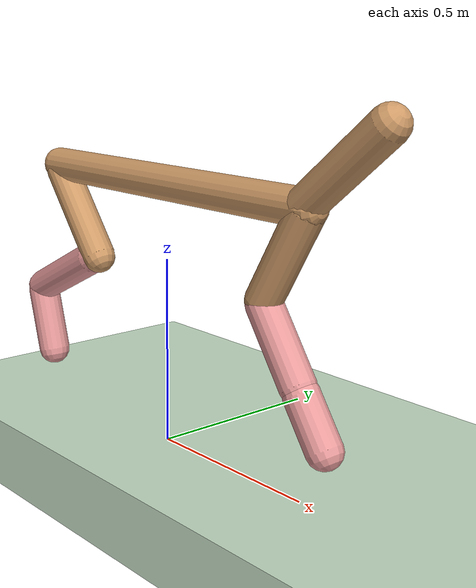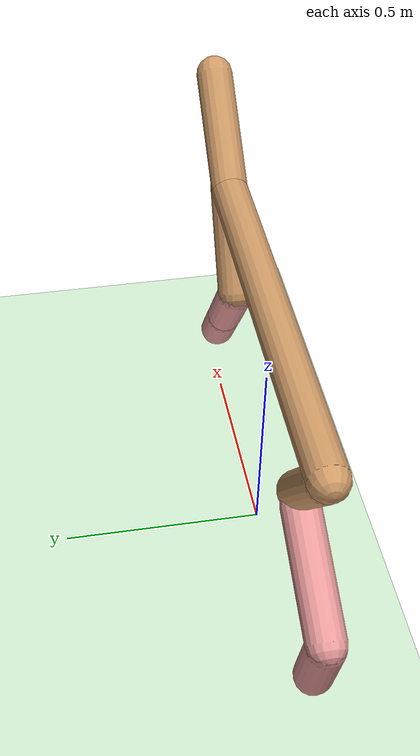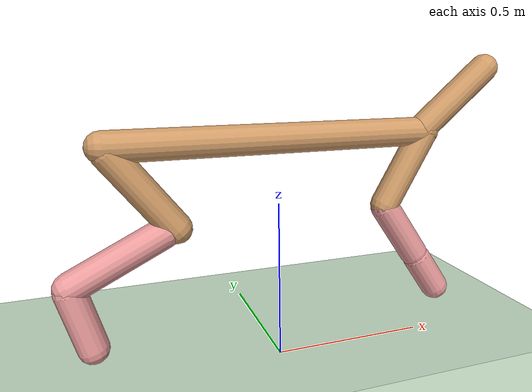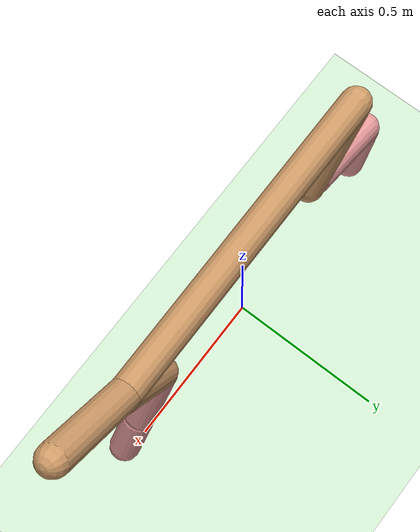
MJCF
<mujoco model="cheetah">
  <compiler angle="radian" coordinate="local" inertiafromgeom="true" settotalmass="14"/>
  <default>
    <joint
      armature=".1"
      damping=".1"
      limited="true"
      solimplimit="0 .95 .06"
      solreflimit=".01 .8"
      stiffness="20"
    />
    <geom
      conaffinity="0"
      condim="3"
      contype="1"
      friction=".6 .1 .1"
      rgba="0.8 0.6 .4 1"
      solimp="0.1 0.95 0.03"
      solref="0.015 0.7"
    />
    <motor ctrllimited="true" ctrlrange="-1 1"/>
  </default>
  <size nstack="300000" nuser_geom="1"/>
  <option
    gravity="0 0 -9.81"
    integrator="RK4"
    solver="PGS"
    iterations="100"
    tolerance="1e-5"
  />
  <asset>
    <texture builtin="gradient" height="100" rgb1="1 1 1" rgb2="0 0 0" type="skybox" width="100"/>
    <texture builtin="flat" height="1278" mark="cross" markrgb="1 1 1" name="texgeom" random="0.01" rgb1="0.8 0.6 0.4" rgb2="0.8 0.6 0.4" type="cube" width="127"/>
    <texture builtin="checker" height="100" name="texplane" rgb1="0 0 0" rgb2="0.8 0.8 0.8" type="2d" width="100"/>
    <material name="MatPlane" reflectance="0.5" shininess="1" specular="1" texrepeat="60 60" texture="texplane"/>
    <material name="geom" texture="texgeom" texuniform="true"/>
  </asset>

  <!-- contype="1": 衝突タイプ -->
  <!-- conaffinity="1": 衝突アフィニティ -->
  <!-- condim="3" : 3軸衝突 -->
  <!-- friction 摩擦を弱めて滑りやすく -->
  <!-- solimp: [penetration, bounce, solref-scaling]
       第一引数小さく：沈み込みOK
       第二引数小さく：バウンド抑制
       第三引数小さく：コンタクト剛性下げる -->
  <!--solref: [time-constant, damping-ratio]
    大きめの time-constant → ゆっくり復元
    大きめの damping-ratio → エネルギー散逸増大-->
  <worldbody>
    <light cutoff="100" diffuse="1 1 1" dir="-0 0 -1.3" directional="true" exponent="1" pos="0 0 1.3" specular=".1 .1 .1"/>
    <geom
      name="floor"
      type="box"
      size="40 40 0.1"
      pos="0 0 -0.1"
      material="MatPlane"
      rgba="0.8 0.9 0.8 1"
      contype="1"
      conaffinity="1"
      condim="3"
      friction="0.3 0.05 0.05"
      solimp="0.05 0.2 0.001"
      solref="0.1 1.2"/>
    <body name="torso" pos="0 0 .7">
      <camera name="track" mode="trackcom" pos="0 -3 0.3" xyaxes="1 0 0 0 0 1"/>
      <joint armature="0" axis="1 0 0" damping="0" limited="false" name="rootx" pos="0 0 0" stiffness="0" type="slide"/>
      <joint armature="0" axis="0 0 1" damping="0" limited="false" name="rootz" pos="0 0 0" stiffness="0" type="slide"/>
      <joint armature="0" axis="0 1 0" damping="0" limited="false" name="rooty" pos="0 0 0" stiffness="0" type="hinge"/>
      <geom fromto="-.5 0 0 .5 0 0" name="torso" size="0.046" type="capsule"/>
      <geom axisangle="0 1 0 .87" name="head" pos=".6 0 .1" size="0.046 .15" type="capsule"/>
      <body name="bthigh" pos="-.5 0 0">
        <joint axis="0 1 0" damping="6" name="bthigh" pos="0 0 0" range="-.52 1.05" stiffness="240" type="hinge"/>
        <geom axisangle="0 1 0 -3.8" name="bthigh" pos=".1 0 -.13" size="0.046 .145" type="capsule"/>
        <body name="bshin" pos=".16 0 -.25">
          <joint axis="0 1 0" damping="4.5" name="bshin" pos="0 0 0" range="-.785 .785" stiffness="180" type="hinge"/>
          <geom axisangle="0 1 0 -2.03" name="bshin" pos="-.14 0 -.07" rgba="0.9 0.6 0.6 1" size="0.046 .15" type="capsule"/>
          <body name="bfoot" pos="-.28 0 -.14">
            <joint
              axis="0 1 0"
              damping="3"
              name="bfoot"
              pos="0 0 0"
              range="-.4 .785"
              stiffness="120"
              type="hinge"
            />
            <geom
              axisangle="0 1 0 -.27"
              name="bfoot"
              pos=".03 0 -.097"
              size="0.046 .094"
              type="capsule"
              rgba="0.9 0.6 0.6 1"
              friction="0.5 0.1 0.1"
              solimp="0.1 0.9 0.02"
              solref="0.02 0.7"
            />
          </body>
        </body>
      </body>
      <body name="fthigh" pos=".5 0 0">
        <joint axis="0 1 0" damping="4.5" name="fthigh" pos="0 0 0" range="-1 .7" stiffness="180" type="hinge"/>
        <geom axisangle="0 1 0 .52" name="fthigh" pos="-.07 0 -.12" size="0.046 .133" type="capsule"/>
        <body name="fshin" pos="-.14 0 -.24">
          <joint axis="0 1 0" damping="3" name="fshin" pos="0 0 0" range="-1.2 .87" stiffness="120" type="hinge"/>
          <geom axisangle="0 1 0 -.6" name="fshin" pos=".065 0 -.09" rgba="0.9 0.6 0.6 1" size="0.046 .106" type="capsule"/>
          <body name="ffoot" pos=".13 0 -.18">
            <joint
              axis="0 1 0"
              damping="3.0"
              name="ffoot"
              pos="0 0 0"
              range="-.5 .5"
              stiffness="120"
              type="hinge"
            />
            <geom
              axisangle="0 1 0 -.6"
              name="ffoot"
              pos=".045 0 -.07"
              size="0.046 .07"
              type="capsule"
              rgba="0.9 0.6 0.6 1"
              friction="0.5 0.1 0.1"
              solimp="0.1 0.9 0.02"
              solref="0.02 0.7"
            />
          </body>
        </body>
      </body>
    </body>
  </worldbody>
  <actuator>
    <motor gear="120" joint="bthigh" name="bthigh"/>
    <motor gear="90" joint="bshin" name="bshin"/>
    <motor gear="60" joint="bfoot" name="bfoot"/>
    <motor gear="120" joint="fthigh" name="fthigh"/>
    <motor gear="60" joint="fshin" name="fshin"/>
    <motor gear="30" joint="ffoot" name="ffoot"/>
  </actuator>
</mujoco>
